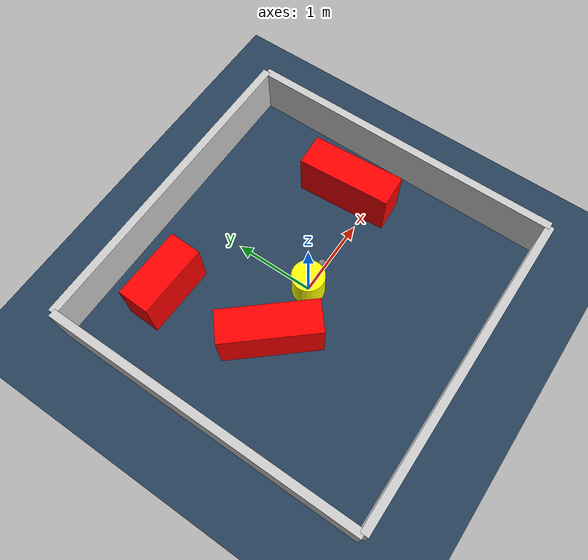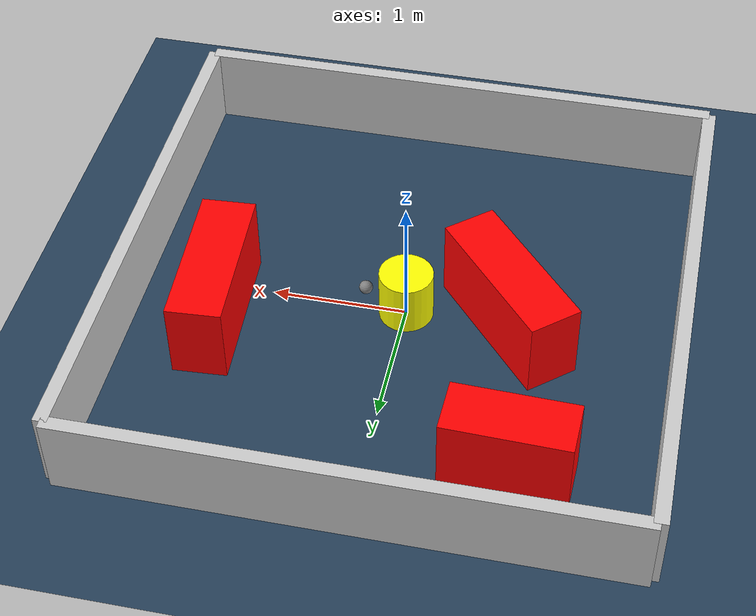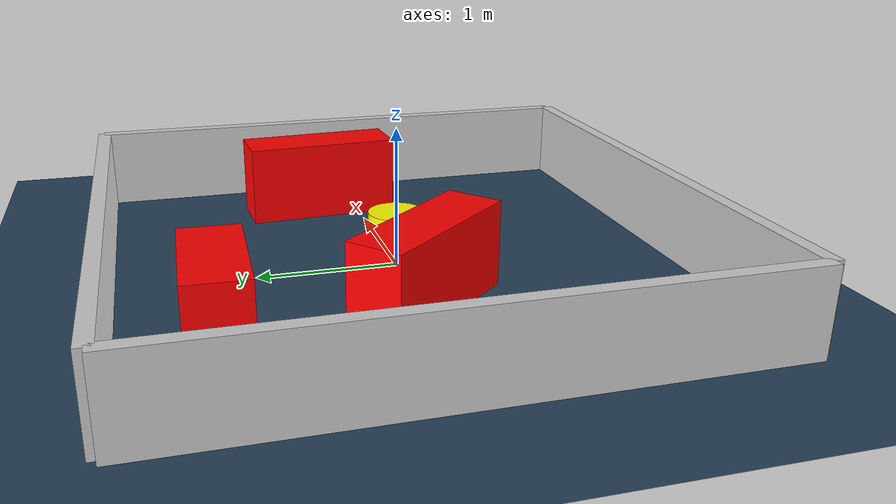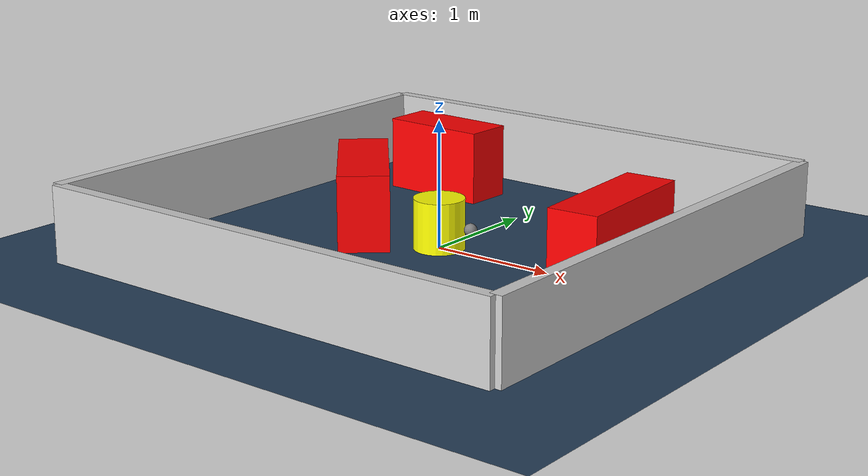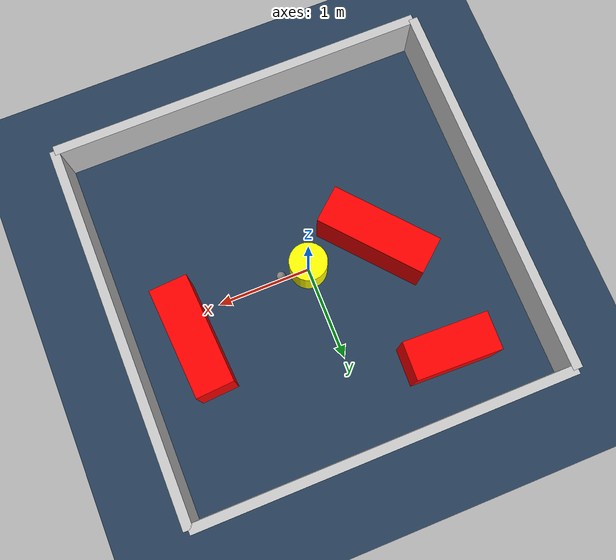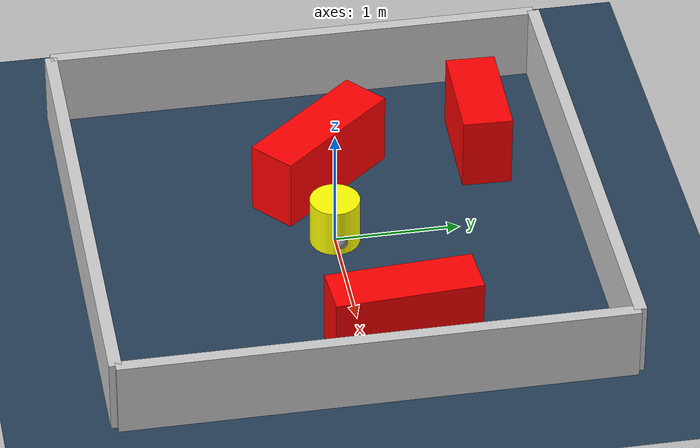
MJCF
<?xml version="1.0" ?>
<mujoco model="generated_environment">
  <option timestep="0.01" integrator="RK4" cone="elliptic"/>
  <default>
    <geom density="1"/>
  </default>
  <asset>
    <texture builtin="gradient" height="3072" rgb1="0.3 0.5 0.7" rgb2="0 0 0" type="skybox" width="512"/>
    <texture builtin="checker" height="300" mark="edge" markrgb="0.8 0.8 0.8" name="groundplane" rgb1="0.2 0.3 0.4" rgb2="0.1 0.2 0.3" type="2d" width="300"/>
    <material name="groundplane" reflectance="0.2" texrepeat="5 5" texture="groundplane" texuniform="true"/>
    <material name="robot" rgba="0.0 1.0 0.0 1"/>
  </asset>
  <worldbody>
    <light dir="0 0 -1" directional="true" pos="0 0 1.5"/>
    <geom condim="4" friction="1.0 0.005 0.001" material="groundplane" name="floor" size="0 0 0.05" type="plane"/>
    <body name="walls">
      <geom name="wall_1" condim="4" pos="-2.0 0.0 0.3" rgba="0.800000011920929 0.800000011920929 0.800000011920929 1.0" size="0.05 2.0 0.3" type="box"/>
      <geom name="wall_2" condim="4" pos="2.0 0.0 0.3" rgba="0.800000011920929 0.800000011920929 0.800000011920929 1.0" size="0.05 2.0 0.3" type="box"/>
      <geom name="wall_3" condim="4" pos="0.0 -2.0 0.3" rgba="0.800000011920929 0.800000011920929 0.800000011920929 1.0" size="2.0 0.05 0.3" type="box"/>
      <geom name="wall_4" condim="4" pos="0.0 2.0 0.3" rgba="0.800000011920929 0.800000011920929 0.800000011920929 1.0" size="2.0 0.05 0.3" type="box"/>
    </body>
    <body name="robot">
      <joint name="joint_x" type="slide" pos="0 0 0" axis="1 0 0"/>
      <joint name="joint_y" type="slide" pos="0 0 0" axis="0 1 0"/>
      <geom name="robot" type="sphere" pos="0.3 0.0 0.2" size="0.05" mass="5." friction="1.0 0.005 0.0001" condim="4" rgba="0.5 0.5 0.5 1.0"/>
      <site name="sensor_ball"/>
    </body>
    <body name="obstacle_movable_1">
      <geom name="obstacle_movable_1" condim="4" pos="0.0 0.0 0.2" euler="0 0 0.0" friction="1.0 0.005 0.001" rgba="1.0 1.0 0.0 1.0" size="0.2 0.2 0.0" type="cylinder" mass="0.1"/>
      <joint type="free"/>
    </body>
    <body name="obstacle_2_static">
      <geom name="obstacle_2_static" condim="4" pos="-0.7578470855058705 6.476538993327452e-06 0.3" euler="0 0 130.66517557114932" friction="1.0 0.005 0.001" rgba="1 0 0 1" size="0.5906107871337407 0.2 0.3" type="box"/>
    </body>
    <body name="obstacle_3_static">
      <geom name="obstacle_3_static" condim="4" pos="-0.9689502906372424 1.3428867198925662 0.3" euler="0 0 358.2339432011595" friction="1.0 0.005 0.001" rgba="1 0 0 1" size="0.4473447768810349 0.2 0.3" type="box"/>
    </body>
    <body name="obstacle_4_static">
      <geom name="obstacle_4_static" condim="4" pos="1.3520964515026224 0.305082702413743 0.3" euler="0 0 273.4683690794031" friction="1.0 0.005 0.001" rgba="1 0 0 1" size="0.5810183260592936 0.2 0.3" type="box"/>
    </body>
  </worldbody>
  <actuator>
    <motor name="actuator_x" joint="joint_x" gear="1" ctrlrange="-1 1"/>
    <motor name="actuator_y" joint="joint_y" gear="1" ctrlrange="-1 1"/>
  </actuator>
</mujoco>
